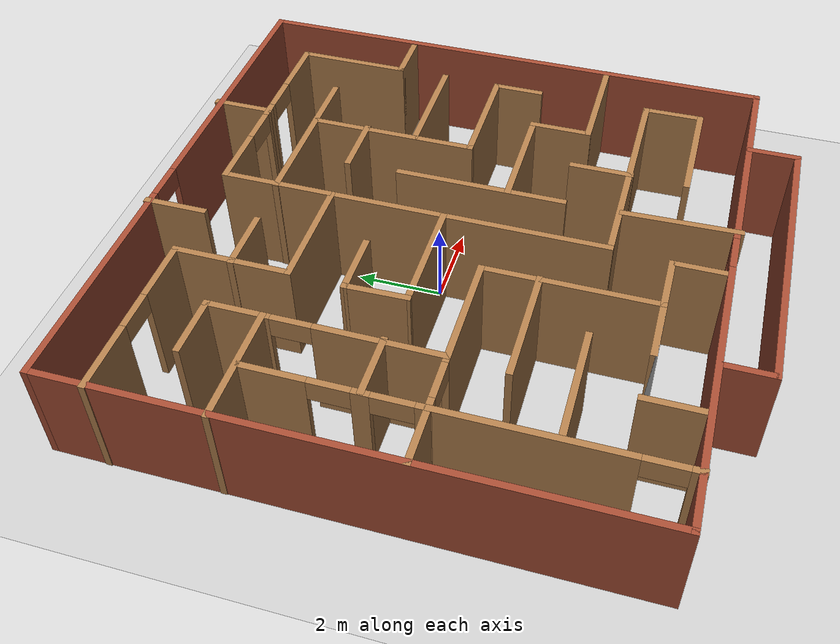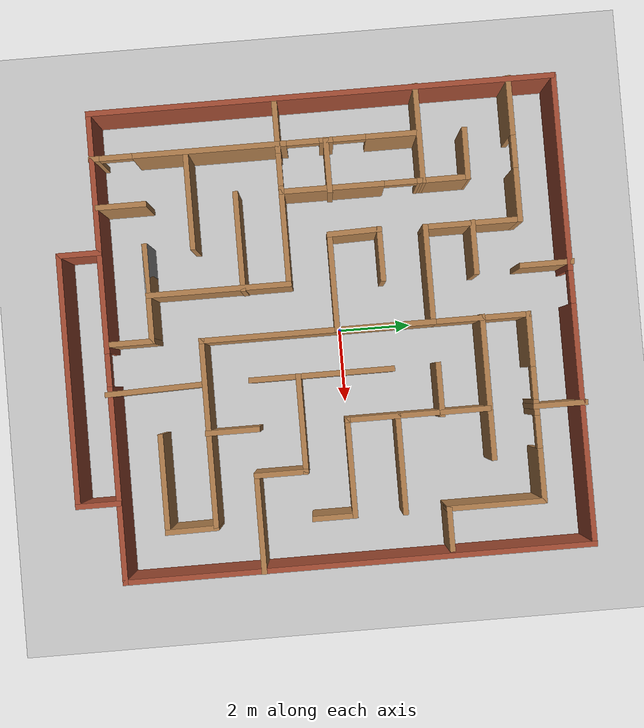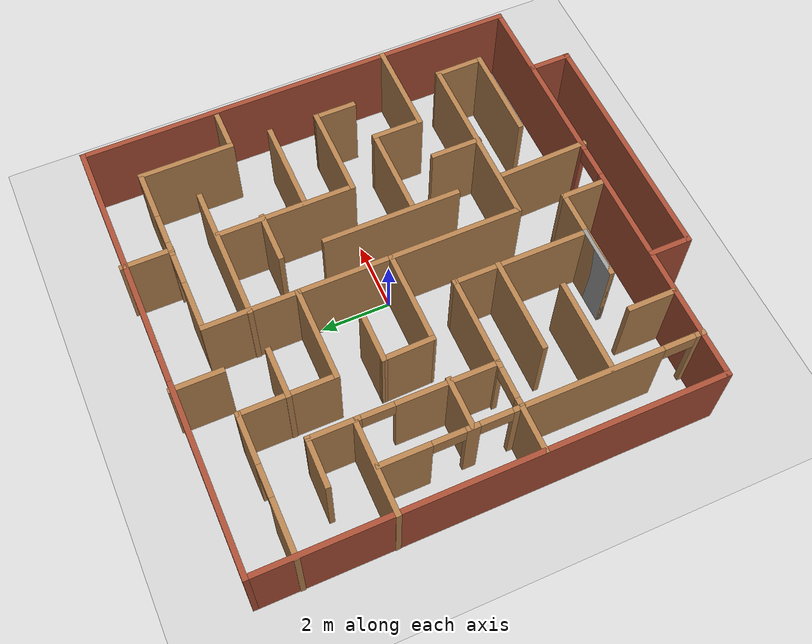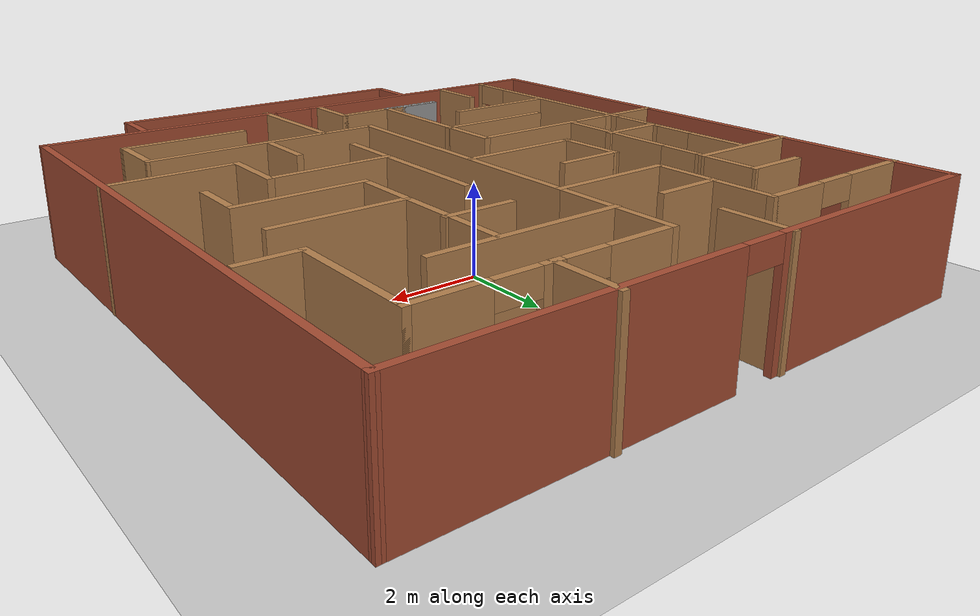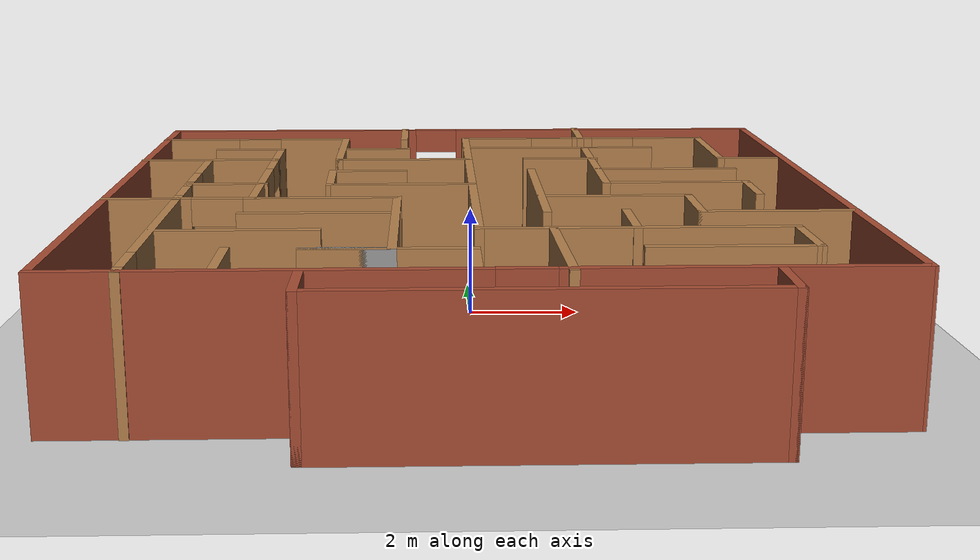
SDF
<sdf version="1.7">
 <world name="default">
  <light name="sun" type="directional">
   <pose>0 0 10 0 -0 0</pose>
   <diffuse>0.8 0.8 0.8 1</diffuse>
   <specular>0.2 0.2 0.2 1</specular>
   <attenuation>
    <range>1000</range>
    <constant>0.9</constant>
    <linear>0.01</linear>
    <quadratic>0.001</quadratic>
   </attenuation>
   <direction>-0.5 0.1 -0.9</direction>
   <spot><inner_angle>0</inner_angle><outer_angle>0</outer_angle><falloff>0</falloff></spot>
  </light>
  <model name="ground_plane">
   <static>1</static>
   <link name="link">
    <collision name="collision">
     <geometry><plane><normal>0 0 1</normal><size>100 100</size></plane></geometry>
     <surface>
      <contact><collide_bitmask>65535</collide_bitmask></contact>
      <friction><ode><mu>100</mu><mu2>50</mu2></ode></friction>
     </surface>
    </collision>
    <visual name="visual">
     <cast_shadows>0</cast_shadows>
     <geometry><plane><normal>0 0 1</normal><size>100 100</size></plane></geometry>
     <material>
      <script><uri>file://media/materials/scripts/gazebo.material</uri><name>Gazebo/Grey</name></script>
     </material>
    </visual>
   </link>
  </model>
  <gravity>0 0 -9.8</gravity>
  <magnetic_field>6e-06 2.3e-05 -4.2e-05</magnetic_field>
  <atmosphere type="adiabatic"/>
  <physics type="ode">
   <max_step_size>0.001</max_step_size>
   <real_time_factor>1</real_time_factor>
   <real_time_update_rate>1000</real_time_update_rate>
  </physics>
  <scene><ambient>0.4 0.4 0.4 1</ambient><background>0.7 0.7 0.7 1</background><shadows>1</shadows></scene>
  <audio><device>default</device></audio>
  <spherical_coordinates>
   <surface_model>EARTH_WGS84</surface_model>
   <latitude_deg>0</latitude_deg>
   <longitude_deg>0</longitude_deg>
   <elevation>0</elevation>
   <heading_deg>0</heading_deg>
  </spherical_coordinates>
  <model name="my_maze">
   <pose>-0.019537 -0.508947 0 0 -0 0</pose>
   <link name="Wall_10">
    <collision name="Wall_10_Collision">
     <geometry><box><size>2.75 0.15 2.5</size></box></geometry>
     <pose>0 0 1.25 0 -0 0</pose>
    </collision>
    <visual name="Wall_10_Visual">
     <pose>0 0 1.25 0 -0 0</pose>
     <geometry><box><size>2.75 0.15 2.5</size></box></geometry>
     <material>
      <script><uri>file://media/materials/scripts/gazebo.material</uri><name>Gazebo/Wood</name></script>
      <ambient>1 1 1 1</ambient>
     </material>
     <meta><layer>0</layer></meta>
    </visual>
    <pose>-2.54872 4.35589 0 0 -0 -1.5708</pose>
   </link>
   <link name="Wall_11">
    <collision name="Wall_11_Collision">
     <geometry><box><size>2.75 0.15 2.5</size></box></geometry>
     <pose>0 0 1.25 0 -0 0</pose>
    </collision>
    <visual name="Wall_11_Visual">
     <pose>0 0 1.25 0 -0 0</pose>
     <geometry><box><size>2.75 0.15 2.5</size></box></geometry>
     <material>
      <script><uri>file://media/materials/scripts/gazebo.material</uri><name>Gazebo/Wood</name></script>
      <ambient>1 1 1 1</ambient>
     </material>
     <meta><layer>0</layer></meta>
    </visual>
    <pose>-1.24872 3.05589 0 0 -0 0</pose>
   </link>
   <link name="Wall_12">
    <collision name="Wall_12_Collision">
     <geometry><box><size>2.75 0.15 2.5</size></box></geometry>
     <pose>0 0 1.25 0 -0 0</pose>
    </collision>
    <visual name="Wall_12_Visual">
     <pose>0 0 1.25 0 -0 0</pose>
     <geometry><box><size>2.75 0.15 2.5</size></box></geometry>
     <material>
      <script><uri>file://media/materials/scripts/gazebo.material</uri><name>Gazebo/Wood</name></script>
      <ambient>1 1 1 1</ambient>
     </material>
     <meta><layer>0</layer></meta>
    </visual>
    <pose>0.051277 4.35589 0 0 -0 1.5708</pose>
   </link>
   <link name="Wall_13">
    <pose>2.60128 5.65589 0 0 -0 0</pose>
    <visual name="Wall_13_Visual_0">
     <pose>-1.8672 0 1.25 0 -0 0</pose>
     <geometry><box><size>1.51561 0.15 2.5</size></box></geometry>
     <material>
      <script><uri>file://media/materials/scripts/gazebo.material</uri><name>Gazebo/Wood</name></script>
      <ambient>1 1 1 1</ambient>
     </material>
     <meta><layer>0</layer></meta>
    </visual>
    <collision name="Wall_13_Collision_0">
     <geometry><box><size>1.51561 0.15 2.5</size></box></geometry>
     <pose>-1.8672 0 1.25 0 -0 0</pose>
    </collision>
    <visual name="Wall_13_Visual_1">
     <pose>0.005614 0 1.25 0 -0 0</pose>
     <geometry><box><size>0.43001 0.15 2.5</size></box></geometry>
     <material>
      <script><uri>file://media/materials/scripts/gazebo.material</uri><name>Gazebo/Wood</name></script>
      <ambient>1 1 1 1</ambient>
     </material>
     <meta><layer>0</layer></meta>
    </visual>
    <collision name="Wall_13_Collision_1">
     <geometry><box><size>0.43001 0.15 2.5</size></box></geometry>
     <pose>0.005614 0 1.25 0 -0 0</pose>
    </collision>
    <visual name="Wall_13_Visual_2">
     <pose>1.87281 0 1.25 0 -0 0</pose>
     <geometry><box><size>1.50438 0.15 2.5</size></box></geometry>
     <material>
      <script><uri>file://media/materials/scripts/gazebo.material</uri><name>Gazebo/Wood</name></script>
      <ambient>1 1 1 1</ambient>
     </material>
     <meta><layer>0</layer></meta>
    </visual>
    <collision name="Wall_13_Collision_2">
     <geometry><box><size>1.50438 0.15 2.5</size></box></geometry>
     <pose>1.87281 0 1.25 0 -0 0</pose>
    </collision>
    <visual name="Wall_13_Visual_3">
     <pose>-0.659391 0 2.25 0 -0 0</pose>
     <geometry><box><size>0.9 0.15 0.5</size></box></geometry>
     <material>
      <script><uri>file://media/materials/scripts/gazebo.material</uri><name>Gazebo/Wood</name></script>
      <ambient>1 1 1 1</ambient>
     </material>
     <meta><layer>0</layer></meta>
    </visual>
    <collision name="Wall_13_Collision_3">
     <geometry><box><size>0.9 0.15 0.5</size></box></geometry>
     <pose>-0.659391 0 2.25 0 -0 0</pose>
    </collision>
    <visual name="Wall_13_Visual_4">
     <pose>0.670619 0 2.25 0 -0 0</pose>
     <geometry><box><size>0.9 0.15 0.5</size></box></geometry>
     <material>
      <script><uri>file://media/materials/scripts/gazebo.material</uri><name>Gazebo/Wood</name></script>
      <ambient>1 1 1 1</ambient>
     </material>
     <meta><layer>0</layer></meta>
    </visual>
    <collision name="Wall_13_Collision_4">
     <geometry><box><size>0.9 0.15 0.5</size></box></geometry>
     <pose>0.670619 0 2.25 0 -0 0</pose>
    </collision>
   </link>
   <link name="Wall_14">
    <collision name="Wall_14_Collision">
     <geometry><box><size>2.75 0.15 2.5</size></box></geometry>
     <pose>0 0 1.25 0 -0 0</pose>
    </collision>
    <visual name="Wall_14_Visual">
     <pose>0 0 1.25 0 -0 0</pose>
     <geometry><box><size>2.75 0.15 2.5</size></box></geometry>
     <material>
      <script><uri>file://media/materials/scripts/gazebo.material</uri><name>Gazebo/Wood</name></script>
      <ambient>1 1 1 1</ambient>
     </material>
     <meta><layer>0</layer></meta>
    </visual>
    <pose>5.15128 4.35589 0 0 -0 -1.5708</pose>
   </link>
   <link name="Wall_15">
    <collision name="Wall_15_Collision">
     <geometry><box><size>1.25 0.15 2.5</size></box></geometry>
     <pose>0 0 1.25 0 -0 0</pose>
    </collision>
    <visual name="Wall_15_Visual">
     <pose>0 0 1.25 0 -0 0</pose>
     <geometry><box><size>1.25 0.15 2.5</size></box></geometry>
     <material>
      <script><uri>file://media/materials/scripts/gazebo.material</uri><name>Gazebo/Wood</name></script>
      <ambient>1 1 1 1</ambient>
     </material>
     <meta><layer>0</layer></meta>
    </visual>
    <pose>5.70128 3.05589 0 0 -0 0</pose>
   </link>
   <link name="Wall_19">
    <collision name="Wall_19_Collision">
     <geometry><box><size>1.5 0.15 2.5</size></box></geometry>
     <pose>0 0 1.25 0 -0 0</pose>
    </collision>
    <visual name="Wall_19_Visual">
     <pose>0 0 1.25 0 -0 0</pose>
     <geometry><box><size>1.5 0.15 2.5</size></box></geometry>
     <material>
      <script><uri>file://media/materials/scripts/gazebo.material</uri><name>Gazebo/Wood</name></script>
      <ambient>1 1 1 1</ambient>
     </material>
     <meta><layer>0</layer></meta>
    </visual>
    <pose>-1.88672 4.34836 0 0 -0 0</pose>
   </link>
   <link name="Wall_2">
    <pose>0.004826 6.90642 0 0 -0 0.001362</pose>
    <visual name="Wall_2_Visual_0">
     <pose>-3.76689 0 1.25 0 -0 0</pose>
     <geometry><box><size>5.45393 0.15 2.5</size></box></geometry>
     <material>
      <script><uri>file://media/materials/scripts/gazebo.material</uri><name>Gazebo/Bricks</name></script>
      <ambient>1 1 1 1</ambient>
     </material>
     <meta><layer>0</layer></meta>
    </visual>
    <collision name="Wall_2_Collision_0">
     <geometry><box><size>5.45393 0.15 2.5</size></box></geometry>
     <pose>-3.76689 0 1.25 0 -0 0</pose>
    </collision>
    <visual name="Wall_2_Visual_1">
     <pose>3.17697 0 1.25 0 -0 0</pose>
     <geometry><box><size>6.63379 0.15 2.5</size></box></geometry>
     <material>
      <script><uri>file://media/materials/scripts/gazebo.material</uri><name>Gazebo/Bricks</name></script>
      <ambient>1 1 1 1</ambient>
     </material>
     <meta><layer>0</layer></meta>
    </visual>
    <collision name="Wall_2_Collision_1">
     <geometry><box><size>6.63379 0.15 2.5</size></box></geometry>
     <pose>3.17697 0 1.25 0 -0 0</pose>
    </collision>
    <visual name="Wall_2_Visual_2">
     <pose>-0.589929 0 2.25 0 -0 0</pose>
     <geometry><box><size>0.9 0.15 0.5</size></box></geometry>
     <material>
      <script><uri>file://media/materials/scripts/gazebo.material</uri><name>Gazebo/Bricks</name></script>
      <ambient>1 1 1 1</ambient>
     </material>
     <meta><layer>0</layer></meta>
    </visual>
    <collision name="Wall_2_Collision_2">
     <geometry><box><size>0.9 0.15 0.5</size></box></geometry>
     <pose>-0.589929 0 2.25 0 -0 0</pose>
    </collision>
   </link>
   <link name="Wall_21">
    <collision name="Wall_21_Collision">
     <geometry><box><size>4 0.15 2.5</size></box></geometry>
     <pose>0 0 1.25 0 -0 0</pose>
    </collision>
    <visual name="Wall_21_Visual">
     <pose>0 0 1.25 0 -0 0</pose>
     <geometry><box><size>4 0.15 2.5</size></box></geometry>
     <material>
      <script><uri>file://media/materials/scripts/gazebo.material</uri><name>Gazebo/Wood</name></script>
      <ambient>1 1 1 1</ambient>
     </material>
     <meta><layer>0</layer></meta>
    </visual>
    <pose>1.9539 4.39462 0 0 -0 0</pose>
   </link>
   <link name="Wall_23">
    <collision name="Wall_23_Collision">
     <geometry><box><size>4 0.15 2.5</size></box></geometry>
     <pose>0 0 1.25 0 -0 0</pose>
    </collision>
    <visual name="Wall_23_Visual">
     <pose>0 0 1.25 0 -0 0</pose>
     <geometry><box><size>4 0.15 2.5</size></box></geometry>
     <material>
      <script><uri>file://media/materials/scripts/gazebo.material</uri><name>Gazebo/Wood</name></script>
      <ambient>1 1 1 1</ambient>
     </material>
     <meta><layer>0</layer></meta>
    </visual>
    <pose>2.52701 2.42336 0 0 -0 -1.5708</pose>
   </link>
   <link name="Wall_24">
    <collision name="Wall_24_Collision">
     <geometry><box><size>2.75 0.15 2.5</size></box></geometry>
     <pose>0 0 1.25 0 -0 0</pose>
    </collision>
    <visual name="Wall_24_Visual">
     <pose>0 0 1.25 0 -0 0</pose>
     <geometry><box><size>2.75 0.15 2.5</size></box></geometry>
     <material>
      <script><uri>file://media/materials/scripts/gazebo.material</uri><name>Gazebo/Wood</name></script>
      <ambient>1 1 1 1</ambient>
     </material>
     <meta><layer>0</layer></meta>
    </visual>
    <pose>3.82701 0.498363 0 0 -0 0</pose>
   </link>
   <link name="Wall_25">
    <collision name="Wall_25_Collision">
     <geometry><box><size>1.25 0.15 2.5</size></box></geometry>
     <pose>0 0 1.25 0 -0 0</pose>
    </collision>
    <visual name="Wall_25_Visual">
     <pose>0 0 1.25 0 -0 0</pose>
     <geometry><box><size>1.25 0.15 2.5</size></box></geometry>
     <material>
      <script><uri>file://media/materials/scripts/gazebo.material</uri><name>Gazebo/Wood</name></script>
      <ambient>1 1 1 1</ambient>
     </material>
     <meta><layer>0</layer></meta>
    </visual>
    <pose>5.12701 -0.051637 0 0 -0 -1.5708</pose>
   </link>
   <link name="Wall_27">
    <collision name="Wall_27_Collision">
     <geometry><box><size>2.75 0.15 2.5</size></box></geometry>
     <pose>0 0 1.25 0 -0 0</pose>
    </collision>
    <visual name="Wall_27_Visual">
     <pose>0 0 1.25 0 -0 0</pose>
     <geometry><box><size>2.75 0.15 2.5</size></box></geometry>
     <material>
      <script><uri>file://media/materials/scripts/gazebo.material</uri><name>Gazebo/Wood</name></script>
      <ambient>1 1 1 1</ambient>
     </material>
     <meta><layer>0</layer></meta>
    </visual>
    <pose>3.85014 1.87339 0 0 -0 0</pose>
   </link>
   <link name="Wall_29">
    <collision name="Wall_29_Collision">
     <geometry><box><size>4 0.15 2.5</size></box></geometry>
     <pose>0 0 1.25 0 -0 0</pose>
    </collision>
    <visual name="Wall_29_Visual">
     <pose>0 0 1.25 0 -0 0</pose>
     <geometry><box><size>4 0.15 2.5</size></box></geometry>
     <material>
      <script><uri>file://media/materials/scripts/gazebo.material</uri><name>Gazebo/Wood</name></script>
      <ambient>1 1 1 1</ambient>
     </material>
     <meta><layer>0</layer></meta>
    </visual>
    <pose>1.23169 -0.097874 0 0 -0 -1.5708</pose>
   </link>
   <link name="Wall_3">
    <collision name="Wall_3_Collision">
     <geometry><box><size>12.9352 0.15 2.5</size></box></geometry>
     <pose>0 0 1.25 0 -0 0</pose>
    </collision>
    <visual name="Wall_3_Visual">
     <pose>0 0 1.25 0 -0 0</pose>
     <geometry><box><size>12.9352 0.15 2.5</size></box></geometry>
     <material>
      <script><uri>file://media/materials/scripts/gazebo.material</uri><name>Gazebo/Bricks</name></script>
      <ambient>1 1 1 1</ambient>
     </material>
     <meta><layer>0</layer></meta>
    </visual>
    <pose>6.42368 0.522552 0 0 -0 -1.5708</pose>
   </link>
   <link name="Wall_31">
    <collision name="Wall_31_Collision">
     <geometry><box><size>2.75 0.15 2.5</size></box></geometry>
     <pose>0 0 1.25 0 -0 0</pose>
    </collision>
    <visual name="Wall_31_Visual">
     <pose>0 0 1.25 0 -0 0</pose>
     <geometry><box><size>2.75 0.15 2.5</size></box></geometry>
     <material>
      <script><uri>file://media/materials/scripts/gazebo.material</uri><name>Gazebo/Wood</name></script>
      <ambient>1 1 1 1</ambient>
     </material>
     <meta><layer>0</layer></meta>
    </visual>
    <pose>2.53169 -0.740371 0 0 -0 0</pose>
   </link>
   <link name="Wall_32">
    <collision name="Wall_32_Collision">
     <geometry><box><size>1.5 0.15 2.5</size></box></geometry>
     <pose>0 0 1.25 0 -0 0</pose>
    </collision>
    <visual name="Wall_32_Visual">
     <pose>0 0 1.25 0 -0 0</pose>
     <geometry><box><size>1.5 0.15 2.5</size></box></geometry>
     <material>
      <script><uri>file://media/materials/scripts/gazebo.material</uri><name>Gazebo/Wood</name></script>
      <ambient>1 1 1 1</ambient>
     </material>
     <meta><layer>0</layer></meta>
    </visual>
    <pose>3.83169 -1.41537 0 0 -0 -1.5708</pose>
   </link>
   <link name="Wall_33">
    <collision name="Wall_33_Collision">
     <geometry><box><size>2.75 0.15 2.5</size></box></geometry>
     <pose>0 0 1.25 0 -0 0</pose>
    </collision>
    <visual name="Wall_33_Visual">
     <pose>0 0 1.25 0 -0 0</pose>
     <geometry><box><size>2.75 0.15 2.5</size></box></geometry>
     <material>
      <script><uri>file://media/materials/scripts/gazebo.material</uri><name>Gazebo/Wood</name></script>
      <ambient>1 1 1 1</ambient>
     </material>
     <meta><layer>0</layer></meta>
    </visual>
    <pose>5.13169 -2.09037 0 0 -0 0</pose>
   </link>
   <link name="Wall_35">
    <pose>-3.85141 -0.786632 0 0 -0 0</pose>
    <visual name="Wall_35_Visual_0">
     <pose>-1.83288 0 1.25 0 -0 0</pose>
     <geometry><box><size>1.58424 0.15 2.5</size></box></geometry>
     <material>
      <script><uri>file://media/materials/scripts/gazebo.material</uri><name>Gazebo/Wood</name></script>
      <ambient>1 1 1 1</ambient>
     </material>
     <meta><layer>0</layer></meta>
    </visual>
    <collision name="Wall_35_Collision_0">
     <geometry><box><size>1.58424 0.15 2.5</size></box></geometry>
     <pose>-1.83288 0 1.25 0 -0 0</pose>
    </collision>
    <visual name="Wall_35_Visual_1">
     <pose>1.24212 0 1.25 0 -0 0</pose>
     <geometry><box><size>2.76575 0.15 2.5</size></box></geometry>
     <material>
      <script><uri>file://media/materials/scripts/gazebo.material</uri><name>Gazebo/Wood</name></script>
      <ambient>1 1 1 1</ambient>
     </material>
     <meta><layer>0</layer></meta>
    </visual>
    <collision name="Wall_35_Collision_1">
     <geometry><box><size>2.76575 0.15 2.5</size></box></geometry>
     <pose>1.24212 0 1.25 0 -0 0</pose>
    </collision>
    <visual name="Wall_35_Visual_2">
     <pose>-0.590755 0 2.25 0 -0 0</pose>
     <geometry><box><size>0.9 0.15 0.5</size></box></geometry>
     <material>
      <script><uri>file://media/materials/scripts/gazebo.material</uri><name>Gazebo/Wood</name></script>
      <ambient>1 1 1 1</ambient>
     </material>
     <meta><layer>0</layer></meta>
    </visual>
    <collision name="Wall_35_Collision_2">
     <geometry><box><size>0.9 0.15 0.5</size></box></geometry>
     <pose>-0.590755 0 2.25 0 -0 0</pose>
    </collision>
   </link>
   <link name="Wall_36">
    <collision name="Wall_36_Collision">
     <geometry><box><size>4 0.15 2.5</size></box></geometry>
     <pose>0 0 1.25 0 -0 0</pose>
    </collision>
    <visual name="Wall_36_Visual">
     <pose>0 0 1.25 0 -0 0</pose>
     <geometry><box><size>4 0.15 2.5</size></box></geometry>
     <material>
      <script><uri>file://media/materials/scripts/gazebo.material</uri><name>Gazebo/Wood</name></script>
      <ambient>1 1 1 1</ambient>
     </material>
     <meta><layer>0</layer></meta>
    </visual>
    <pose>-1.30141 -2.71163 0 0 -0 -1.5708</pose>
   </link>
   <link name="Wall_37">
    <collision name="Wall_37_Collision">
     <geometry><box><size>1.5 0.15 2.5</size></box></geometry>
     <pose>0 0 1.25 0 -0 0</pose>
    </collision>
    <visual name="Wall_37_Visual">
     <pose>0 0 1.25 0 -0 0</pose>
     <geometry><box><size>1.5 0.15 2.5</size></box></geometry>
     <material>
      <script><uri>file://media/materials/scripts/gazebo.material</uri><name>Gazebo/Grey</name></script>
      <ambient>1 1 1 1</ambient>
     </material>
     <meta><layer>0</layer></meta>
    </visual>
    <pose>-1.97641 -4.63663 0 0 -0 3.14159</pose>
   </link>
   <link name="Wall_38">
    <collision name="Wall_38_Collision">
     <geometry><box><size>2.75 0.15 2.5</size></box></geometry>
     <pose>0 0 1.25 0 -0 0</pose>
    </collision>
    <visual name="Wall_38_Visual">
     <pose>0 0 1.25 0 -0 0</pose>
     <geometry><box><size>2.75 0.15 2.5</size></box></geometry>
     <material>
      <script><uri>file://media/materials/scripts/gazebo.material</uri><name>Gazebo/Wood</name></script>
      <ambient>1 1 1 1</ambient>
     </material>
     <meta><layer>0</layer></meta>
    </visual>
    <pose>-1.35141 -4.63663 0 0 -0 0</pose>
   </link>
   <link name="Wall_39">
    <collision name="Wall_39_Collision">
     <geometry><box><size>1.25 0.15 2.5</size></box></geometry>
     <pose>0 0 1.25 0 -0 0</pose>
    </collision>
    <visual name="Wall_39_Visual">
     <pose>0 0 1.25 0 -0 0</pose>
     <geometry><box><size>1.25 0.15 2.5</size></box></geometry>
     <material>
      <script><uri>file://media/materials/scripts/gazebo.material</uri><name>Gazebo/Wood</name></script>
      <ambient>1 1 1 1</ambient>
     </material>
     <meta><layer>0</layer></meta>
    </visual>
    <pose>-0.051406 -5.18663 0 0 -0 -1.5708</pose>
   </link>
   <link name="Wall_4">
    <pose>0.013571 -5.87881 0 0 -0 -3.14023</pose>
    <visual name="Wall_4_Visual_0">
     <pose>-3.77997 0 1.25 0 -0 0</pose>
     <geometry><box><size>5.41032 0.15 2.5</size></box></geometry>
     <material>
      <script><uri>file://media/materials/scripts/gazebo.material</uri><name>Gazebo/Bricks</name></script>
      <ambient>1 1 1 1</ambient>
     </material>
     <meta><layer>0</layer></meta>
    </visual>
    <collision name="Wall_4_Collision_0">
     <geometry><box><size>5.41032 0.15 2.5</size></box></geometry>
     <pose>-3.77997 0 1.25 0 -0 0</pose>
    </collision>
    <visual name="Wall_4_Visual_1">
     <pose>3.15516 0 1.25 0 -0 0</pose>
     <geometry><box><size>6.65994 0.15 2.5</size></box></geometry>
     <material>
      <script><uri>file://media/materials/scripts/gazebo.material</uri><name>Gazebo/Bricks</name></script>
      <ambient>1 1 1 1</ambient>
     </material>
     <meta><layer>0</layer></meta>
    </visual>
    <collision name="Wall_4_Collision_1">
     <geometry><box><size>6.65994 0.15 2.5</size></box></geometry>
     <pose>3.15516 0 1.25 0 -0 0</pose>
    </collision>
    <visual name="Wall_4_Visual_2">
     <pose>-0.624813 0 2.25 0 -0 0</pose>
     <geometry><box><size>0.9 0.15 0.5</size></box></geometry>
     <material>
      <script><uri>file://media/materials/scripts/gazebo.material</uri><name>Gazebo/Bricks</name></script>
      <ambient>1 1 1 1</ambient>
     </material>
     <meta><layer>0</layer></meta>
    </visual>
    <collision name="Wall_4_Collision_2">
     <geometry><box><size>0.9 0.15 0.5</size></box></geometry>
     <pose>-0.624813 0 2.25 0 -0 0</pose>
    </collision>
   </link>
   <link name="Wall_41">
    <collision name="Wall_41_Collision">
     <geometry><box><size>2.75 0.15 2.5</size></box></geometry>
     <pose>0 0 1.25 0 -0 0</pose>
    </collision>
    <visual name="Wall_41_Visual">
     <pose>0 0 1.25 0 -0 0</pose>
     <geometry><box><size>2.75 0.15 2.5</size></box></geometry>
     <material>
      <script><uri>file://media/materials/scripts/gazebo.material</uri><name>Gazebo/Wood</name></script>
      <ambient>1 1 1 1</ambient>
     </material>
     <meta><layer>0</layer></meta>
    </visual>
    <pose>-5.12454 3.09931 0 0 -0 0</pose>
   </link>
   <link name="Wall_48">
    <collision name="Wall_48_Collision">
     <geometry><box><size>1.38431 0.15 2.5</size></box></geometry>
     <pose>0 0 1.25 0 -0 0</pose>
    </collision>
    <visual name="Wall_48_Visual">
     <pose>0 0 1.25 0 -0 0</pose>
     <geometry><box><size>1.38431 0.15 2.5</size></box></geometry>
     <material>
      <script><uri>file://media/materials/scripts/gazebo.material</uri><name>Gazebo/Wood</name></script>
      <ambient>1 1 1 1</ambient>
     </material>
     <meta><layer>0</layer></meta>
    </visual>
    <pose>-3.82452 3.71647 0 0 -0 1.57077</pose>
   </link>
   <link name="Wall_49">
    <collision name="Wall_49_Collision">
     <geometry><box><size>1.43805 0.15 2.5</size></box></geometry>
     <pose>0 0 1.25 0 -0 0</pose>
    </collision>
    <visual name="Wall_49_Visual">
     <pose>0 0 1.25 0 -0 0</pose>
     <geometry><box><size>1.43805 0.15 2.5</size></box></geometry>
     <material>
      <script><uri>file://media/materials/scripts/gazebo.material</uri><name>Gazebo/Wood</name></script>
      <ambient>1 1 1 1</ambient>
     </material>
     <meta><layer>0</layer></meta>
    </visual>
    <pose>-4.46851 4.33938 0 0 -0 3.13266</pose>
   </link>
   <link name="Wall_5">
    <collision name="Wall_5_Collision">
     <geometry><box><size>12.9352 0.15 2.5</size></box></geometry>
     <pose>0 0 1.25 0 -0 0</pose>
    </collision>
    <visual name="Wall_5_Visual">
     <pose>0 0 1.25 0 -0 0</pose>
     <geometry><box><size>12.9352 0.15 2.5</size></box></geometry>
     <material>
      <script><uri>file://media/materials/scripts/gazebo.material</uri><name>Gazebo/Bricks</name></script>
      <ambient>1 1 1 1</ambient>
     </material>
     <meta><layer>0</layer></meta>
    </visual>
    <pose>-6.40528 0.505062 0 0 -0 1.57216</pose>
   </link>
   <link name="Wall_51">
    <pose>-3.83027 1.15772 0 0 -0 1.56784</pose>
    <visual name="Wall_51_Visual_0">
     <pose>-0.568955 0 1.25 0 -0 0</pose>
     <geometry><box><size>2.89529 0.15 2.5</size></box></geometry>
     <material>
      <script><uri>file://media/materials/scripts/gazebo.material</uri><name>Gazebo/Wood</name></script>
      <ambient>1 1 1 1</ambient>
     </material>
     <meta><layer>0</layer></meta>
    </visual>
    <collision name="Wall_51_Collision_0">
     <geometry><box><size>2.89529 0.15 2.5</size></box></geometry>
     <pose>-0.568955 0 1.25 0 -0 0</pose>
    </collision>
    <visual name="Wall_51_Visual_1">
     <pose>1.89765 0 1.25 0 -0 0</pose>
     <geometry><box><size>0.23791 0.15 2.5</size></box></geometry>
     <material>
      <script><uri>file://media/materials/scripts/gazebo.material</uri><name>Gazebo/Wood</name></script>
      <ambient>1 1 1 1</ambient>
     </material>
     <meta><layer>0</layer></meta>
    </visual>
    <collision name="Wall_51_Collision_1">
     <geometry><box><size>0.23791 0.15 2.5</size></box></geometry>
     <pose>1.89765 0 1.25 0 -0 0</pose>
    </collision>
    <visual name="Wall_51_Visual_2">
     <pose>1.32869 0 2.25 0 -0 0</pose>
     <geometry><box><size>0.9 0.15 0.5</size></box></geometry>
     <material>
      <script><uri>file://media/materials/scripts/gazebo.material</uri><name>Gazebo/Wood</name></script>
      <ambient>1 1 1 1</ambient>
     </material>
     <meta><layer>0</layer></meta>
    </visual>
    <collision name="Wall_51_Collision_2">
     <geometry><box><size>0.9 0.15 0.5</size></box></geometry>
     <pose>1.32869 0 2.25 0 -0 0</pose>
    </collision>
   </link>
   <link name="Wall_53">
    <pose>-5.14701 1.12062 0 0 -0 -1.5708</pose>
    <visual name="Wall_53_Visual_0">
     <pose>-1.25607 0 1.25 0 -0 0</pose>
     <geometry><box><size>1.48786 0.15 2.5</size></box></geometry>
     <material>
      <script><uri>file://media/materials/scripts/gazebo.material</uri><name>Gazebo/Wood</name></script>
      <ambient>1 1 1 1</ambient>
     </material>
     <meta><layer>0</layer></meta>
    </visual>
    <collision name="Wall_53_Collision_0">
     <geometry><box><size>1.48786 0.15 2.5</size></box></geometry>
     <pose>-1.25607 0 1.25 0 -0 0</pose>
    </collision>
    <visual name="Wall_53_Visual_1">
     <pose>0.57626 0 1.25 0 -0 0</pose>
     <geometry><box><size>0.37681 0.15 2.5</size></box></geometry>
     <material>
      <script><uri>file://media/materials/scripts/gazebo.material</uri><name>Gazebo/Wood</name></script>
      <ambient>1 1 1 1</ambient>
     </material>
     <meta><layer>0</layer></meta>
    </visual>
    <collision name="Wall_53_Collision_1">
     <geometry><box><size>0.37681 0.15 2.5</size></box></geometry>
     <pose>0.57626 0 1.25 0 -0 0</pose>
    </collision>
    <visual name="Wall_53_Visual_2">
     <pose>1.83233 0 1.25 0 -0 0</pose>
     <geometry><box><size>0.335335 0.15 2.5</size></box></geometry>
     <material>
      <script><uri>file://media/materials/scripts/gazebo.material</uri><name>Gazebo/Wood</name></script>
      <ambient>1 1 1 1</ambient>
     </material>
     <meta><layer>0</layer></meta>
    </visual>
    <collision name="Wall_53_Collision_2">
     <geometry><box><size>0.335335 0.15 2.5</size></box></geometry>
     <pose>1.83233 0 1.25 0 -0 0</pose>
    </collision>
    <visual name="Wall_53_Visual_3">
     <pose>-0.062144 0 2.25 0 -0 0</pose>
     <geometry><box><size>0.9 0.15 0.5</size></box></geometry>
     <material>
      <script><uri>file://media/materials/scripts/gazebo.material</uri><name>Gazebo/Wood</name></script>
      <ambient>1 1 1 1</ambient>
     </material>
     <meta><layer>0</layer></meta>
    </visual>
    <collision name="Wall_53_Collision_3">
     <geometry><box><size>0.9 0.15 0.5</size></box></geometry>
     <pose>-0.062144 0 2.25 0 -0 0</pose>
    </collision>
    <visual name="Wall_53_Visual_4">
     <pose>1.21467 0 2.25 0 -0 0</pose>
     <geometry><box><size>0.9 0.15 0.5</size></box></geometry>
     <material>
      <script><uri>file://media/materials/scripts/gazebo.material</uri><name>Gazebo/Wood</name></script>
      <ambient>1 1 1 1</ambient>
     </material>
     <meta><layer>0</layer></meta>
    </visual>
    <collision name="Wall_53_Collision_4">
     <geometry><box><size>0.9 0.15 0.5</size></box></geometry>
     <pose>1.21467 0 2.25 0 -0 0</pose>
    </collision>
   </link>
   <link name="Wall_55">
    <collision name="Wall_55_Collision">
     <geometry><box><size>1.5 0.15 2.5</size></box></geometry>
     <pose>0 0 1.25 0 -0 0</pose>
    </collision>
    <visual name="Wall_55_Visual">
     <pose>0 0 1.25 0 -0 0</pose>
     <geometry><box><size>1.5 0.15 2.5</size></box></geometry>
     <material>
      <script><uri>file://media/materials/scripts/gazebo.material</uri><name>Gazebo/Wood</name></script>
      <ambient>1 1 1 1</ambient>
     </material>
     <meta><layer>0</layer></meta>
    </visual>
    <pose>-4.44901 0.538625 0 0 -0 0</pose>
   </link>
   <link name="Wall_57">
    <pose>-5.14701 -3.35438 0 0 -0 -1.5708</pose>
    <visual name="Wall_57_Visual_0">
     <pose>-0.600748 0 1.25 0 -0 0</pose>
     <geometry><box><size>4.0485 0.15 2.5</size></box></geometry>
     <material>
      <script><uri>file://media/materials/scripts/gazebo.material</uri><name>Gazebo/Wood</name></script>
      <ambient>1 1 1 1</ambient>
     </material>
     <meta><layer>0</layer></meta>
    </visual>
    <collision name="Wall_57_Collision_0">
     <geometry><box><size>4.0485 0.15 2.5</size></box></geometry>
     <pose>-0.600748 0 1.25 0 -0 0</pose>
    </collision>
    <visual name="Wall_57_Visual_1">
     <pose>2.47425 0 1.25 0 -0 0</pose>
     <geometry><box><size>0.301496 0.15 2.5</size></box></geometry>
     <material>
      <script><uri>file://media/materials/scripts/gazebo.material</uri><name>Gazebo/Wood</name></script>
      <ambient>1 1 1 1</ambient>
     </material>
     <meta><layer>0</layer></meta>
    </visual>
    <collision name="Wall_57_Collision_1">
     <geometry><box><size>0.301496 0.15 2.5</size></box></geometry>
     <pose>2.47425 0 1.25 0 -0 0</pose>
    </collision>
    <visual name="Wall_57_Visual_2">
     <pose>1.8735 0 2.25 0 -0 0</pose>
     <geometry><box><size>0.9 0.15 0.5</size></box></geometry>
     <material>
      <script><uri>file://media/materials/scripts/gazebo.material</uri><name>Gazebo/Wood</name></script>
      <ambient>1 1 1 1</ambient>
     </material>
     <meta><layer>0</layer></meta>
    </visual>
    <collision name="Wall_57_Collision_2">
     <geometry><box><size>0.9 0.15 0.5</size></box></geometry>
     <pose>1.8735 0 2.25 0 -0 0</pose>
    </collision>
   </link>
   <link name="Wall_59">
    <collision name="Wall_59_Collision">
     <geometry><box><size>2.75 0.15 2.5</size></box></geometry>
     <pose>0 0 1.25 0 -0 0</pose>
    </collision>
    <visual name="Wall_59_Visual">
     <pose>0 0 1.25 0 -0 0</pose>
     <geometry><box><size>2.75 0.15 2.5</size></box></geometry>
     <material>
      <script><uri>file://media/materials/scripts/gazebo.material</uri><name>Gazebo/Wood</name></script>
      <ambient>1 1 1 1</ambient>
     </material>
     <meta><layer>0</layer></meta>
    </visual>
    <pose>-3.82793 -3.3185 0 0 -0 0</pose>
   </link>
   <link name="Wall_61">
    <collision name="Wall_61_Collision">
     <geometry><box><size>2.75 0.15 2.5</size></box></geometry>
     <pose>0 0 1.25 0 -0 0</pose>
    </collision>
    <visual name="Wall_61_Visual">
     <pose>0 0 1.25 0 -0 0</pose>
     <geometry><box><size>2.75 0.15 2.5</size></box></geometry>
     <material>
      <script><uri>file://media/materials/scripts/gazebo.material</uri><name>Gazebo/Wood</name></script>
      <ambient>1 1 1 1</ambient>
     </material>
     <meta><layer>0</layer></meta>
    </visual>
    <pose>-2.57888 -2.04632 0 0 -0 0</pose>
   </link>
   <link name="Wall_63">
    <collision name="Wall_63_Collision">
     <geometry><box><size>1.39905 0.15 2.5</size></box></geometry>
     <pose>0 0 1.25 0 -0 0</pose>
    </collision>
    <visual name="Wall_63_Visual">
     <pose>0 0 1.25 0 -0 0</pose>
     <geometry><box><size>1.39905 0.15 2.5</size></box></geometry>
     <material>
      <script><uri>file://media/materials/scripts/gazebo.material</uri><name>Gazebo/Wood</name></script>
      <ambient>1 1 1 1</ambient>
     </material>
     <meta><layer>0</layer></meta>
    </visual>
    <pose>-3.80949 -5.19208 0 0 -0 1.5708</pose>
   </link>
   <link name="Wall_65">
    <collision name="Wall_65_Collision">
     <geometry><box><size>6.5 0.15 2.5</size></box></geometry>
     <pose>0 0 1.25 0 -0 0</pose>
    </collision>
    <visual name="Wall_65_Visual">
     <pose>0 0 1.25 0 -0 0</pose>
     <geometry><box><size>6.5 0.15 2.5</size></box></geometry>
     <material>
      <script><uri>file://media/materials/scripts/gazebo.material</uri><name>Gazebo/Wood</name></script>
      <ambient>1 1 1 1</ambient>
     </material>
     <meta><layer>0</layer></meta>
    </visual>
    <pose>0.051277 -0.119114 0 0 -0 -1.5708</pose>
   </link>
   <link name="Wall_66">
    <collision name="Wall_66_Collision">
     <geometry><box><size>5.25 0.15 2.5</size></box></geometry>
     <pose>0 0 1.25 0 -0 0</pose>
    </collision>
    <visual name="Wall_66_Visual">
     <pose>0 0 1.25 0 -0 0</pose>
     <geometry><box><size>5.25 0.15 2.5</size></box></geometry>
     <material>
      <script><uri>file://media/materials/scripts/gazebo.material</uri><name>Gazebo/Wood</name></script>
      <ambient>1 1 1 1</ambient>
     </material>
     <meta><layer>0</layer></meta>
    </visual>
    <pose>2.60128 -3.29411 0 0 -0 0</pose>
   </link>
   <link name="Wall_67">
    <collision name="Wall_67_Collision">
     <geometry><box><size>1.46978 0.15 2.5</size></box></geometry>
     <pose>0 0 1.25 0 -0 0</pose>
    </collision>
    <visual name="Wall_67_Visual">
     <pose>0 0 1.25 0 -0 0</pose>
     <geometry><box><size>1.46978 0.15 2.5</size></box></geometry>
     <material>
      <script><uri>file://media/materials/scripts/gazebo.material</uri><name>Gazebo/Wood</name></script>
      <ambient>1 1 1 1</ambient>
     </material>
     <meta><layer>0</layer></meta>
    </visual>
    <pose>5.15823 -3.95397 0 0 -0 -1.56026</pose>
   </link>
   <link name="Wall_68">
    <collision name="Wall_68_Collision">
     <geometry><box><size>2.75 0.15 2.5</size></box></geometry>
     <pose>0 0 1.25 0 -0 0</pose>
    </collision>
    <visual name="Wall_68_Visual">
     <pose>0 0 1.25 0 -0 0</pose>
     <geometry><box><size>2.75 0.15 2.5</size></box></geometry>
     <material>
      <script><uri>file://media/materials/scripts/gazebo.material</uri><name>Gazebo/Wood</name></script>
      <ambient>1 1 1 1</ambient>
     </material>
     <meta><layer>0</layer></meta>
    </visual>
    <pose>3.86519 -4.61382 0 0 -0 3.14159</pose>
   </link>
   <link name="Wall_7">
    <pose>-4.49012 5.65589 0 0 -0 0</pose>
    <visual name="Wall_7_Visual_0">
     <pose>-1.19601 0 1.25 0 -0 0</pose>
     <geometry><box><size>1.64113 0.15 2.5</size></box></geometry>
     <material>
      <script><uri>file://media/materials/scripts/gazebo.material</uri><name>Gazebo/Wood</name></script>
      <ambient>1 1 1 1</ambient>
     </material>
     <meta><layer>0</layer></meta>
    </visual>
    <collision name="Wall_7_Collision_0">
     <geometry><box><size>1.64113 0.15 2.5</size></box></geometry>
     <pose>-1.19601 0 1.25 0 -0 0</pose>
    </collision>
    <visual name="Wall_7_Visual_1">
     <pose>1.27057 0 1.25 0 -0 0</pose>
     <geometry><box><size>1.49202 0.15 2.5</size></box></geometry>
     <material>
      <script><uri>file://media/materials/scripts/gazebo.material</uri><name>Gazebo/Wood</name></script>
      <ambient>1 1 1 1</ambient>
     </material>
     <meta><layer>0</layer></meta>
    </visual>
    <collision name="Wall_7_Collision_1">
     <geometry><box><size>1.49202 0.15 2.5</size></box></geometry>
     <pose>1.27057 0 1.25 0 -0 0</pose>
    </collision>
    <visual name="Wall_7_Visual_2">
     <pose>0.074558 0 2.25 0 -0 0</pose>
     <geometry><box><size>0.9 0.15 0.5</size></box></geometry>
     <material>
      <script><uri>file://media/materials/scripts/gazebo.material</uri><name>Gazebo/Wood</name></script>
      <ambient>1 1 1 1</ambient>
     </material>
     <meta><layer>0</layer></meta>
    </visual>
    <collision name="Wall_7_Collision_2">
     <geometry><box><size>0.9 0.15 0.5</size></box></geometry>
     <pose>0.074558 0 2.25 0 -0 0</pose>
    </collision>
   </link>
   <link name="Wall_70">
    <collision name="Wall_70_Collision">
     <geometry><box><size>2.74156 0.15 2.5</size></box></geometry>
     <pose>0 0 1.25 0 -0 0</pose>
    </collision>
    <visual name="Wall_70_Visual">
     <pose>0 0 1.25 0 -0 0</pose>
     <geometry><box><size>2.74156 0.15 2.5</size></box></geometry>
     <material>
      <script><uri>file://media/materials/scripts/gazebo.material</uri><name>Gazebo/Wood</name></script>
      <ambient>1 1 1 1</ambient>
     </material>
     <meta><layer>0</layer></meta>
    </visual>
    <pose>1.26768 -4.66008 0 0 -0 -1.54402</pose>
   </link>
   <link name="Wall_72">
    <collision name="Wall_72_Collision">
     <geometry><box><size>1.5 0.15 2.5</size></box></geometry>
     <pose>0 0 1.25 0 -0 0</pose>
    </collision>
    <visual name="Wall_72_Visual">
     <pose>0 0 1.25 0 -0 0</pose>
     <geometry><box><size>1.5 0.15 2.5</size></box></geometry>
     <material>
      <script><uri>file://media/materials/scripts/gazebo.material</uri><name>Gazebo/Wood</name></script>
      <ambient>1 1 1 1</ambient>
     </material>
     <meta><layer>0</layer></meta>
    </visual>
    <pose>-1.91699 1.79336 0 0 -0 3.14159</pose>
   </link>
   <link name="Wall_73">
    <collision name="Wall_73_Collision">
     <geometry><box><size>1.5158 0.15 2.5</size></box></geometry>
     <pose>0 0 1.25 0 -0 0</pose>
    </collision>
    <visual name="Wall_73_Visual">
     <pose>0 0 1.25 0 -0 0</pose>
     <geometry><box><size>1.5158 0.15 2.5</size></box></geometry>
     <material>
      <script><uri>file://media/materials/scripts/gazebo.material</uri><name>Gazebo/Wood</name></script>
      <ambient>1 1 1 1</ambient>
     </material>
     <meta><layer>0</layer></meta>
    </visual>
    <pose>-2.57621 1.11101 0 0 -0 -1.54768</pose>
   </link>
   <link name="Wall_74">
    <collision name="Wall_74_Collision">
     <geometry><box><size>2.75 0.15 2.5</size></box></geometry>
     <pose>0 0 1.25 0 -0 0</pose>
    </collision>
    <visual name="Wall_74_Visual">
     <pose>0 0 1.25 0 -0 0</pose>
     <geometry><box><size>2.75 0.15 2.5</size></box></geometry>
     <material>
      <script><uri>file://media/materials/scripts/gazebo.material</uri><name>Gazebo/Wood</name></script>
      <ambient>1 1 1 1</ambient>
     </material>
     <meta><layer>0</layer></meta>
    </visual>
    <pose>-1.26043 0.428654 0 0 -0 0</pose>
   </link>
   <link name="Wall_76">
    <collision name="Wall_76_Collision">
     <geometry><box><size>1.5 0.15 2.5</size></box></geometry>
     <pose>0 0 1.25 0 -0 0</pose>
    </collision>
    <visual name="Wall_76_Visual">
     <pose>0 0 1.25 0 -0 0</pose>
     <geometry><box><size>1.5 0.15 2.5</size></box></geometry>
     <material>
      <script><uri>file://media/materials/scripts/gazebo.material</uri><name>Gazebo/Wood</name></script>
      <ambient>1 1 1 1</ambient>
     </material>
     <meta><layer>0</layer></meta>
    </visual>
    <pose>1.90798 3.08867 0 0 -0 0</pose>
   </link>
   <link name="Wall_78">
    <collision name="Wall_78_Collision">
     <geometry><box><size>1.5 0.15 2.5</size></box></geometry>
     <pose>0 0 1.25 0 -0 0</pose>
    </collision>
    <visual name="Wall_78_Visual">
     <pose>0 0 1.25 0 -0 0</pose>
     <geometry><box><size>1.5 0.15 2.5</size></box></geometry>
     <material>
      <script><uri>file://media/materials/scripts/gazebo.material</uri><name>Gazebo/Wood</name></script>
      <ambient>1 1 1 1</ambient>
     </material>
     <meta><layer>0</layer></meta>
    </visual>
    <pose>2.57456 -2.6435 0 0 -0 1.5708</pose>
   </link>
   <link name="Wall_80">
    <collision name="Wall_80_Collision">
     <geometry><box><size>1.5 0.15 2.5</size></box></geometry>
     <pose>0 0 1.25 0 -0 0</pose>
    </collision>
    <visual name="Wall_80_Visual">
     <pose>0 0 1.25 0 -0 0</pose>
     <geometry><box><size>1.5 0.15 2.5</size></box></geometry>
     <material>
      <script><uri>file://media/materials/scripts/gazebo.material</uri><name>Gazebo/Wood</name></script>
      <ambient>1 1 1 1</ambient>
     </material>
     <meta><layer>0</layer></meta>
    </visual>
    <pose>2.57622 6.31788 0 0 -0 -1.5708</pose>
   </link>
   <link name="Wall_82">
    <collision name="Wall_82_Collision">
     <geometry><box><size>1.5 0.15 2.5</size></box></geometry>
     <pose>0 0 1.25 0 -0 0</pose>
    </collision>
    <visual name="Wall_82_Visual">
     <pose>0 0 1.25 0 -0 0</pose>
     <geometry><box><size>1.5 0.15 2.5</size></box></geometry>
     <material>
      <script><uri>file://media/materials/scripts/gazebo.material</uri><name>Gazebo/Wood</name></script>
      <ambient>1 1 1 1</ambient>
     </material>
     <meta><layer>0</layer></meta>
    </visual>
    <pose>-1.27674 6.28001 0 0 -0 -1.5708</pose>
   </link>
   <link name="Wall_84">
    <collision name="Wall_84_Collision">
     <geometry><box><size>1.25 0.15 2.5</size></box></geometry>
     <pose>0 0 1.25 0 -0 0</pose>
    </collision>
    <visual name="Wall_84_Visual">
     <pose>0 0 1.25 0 -0 0</pose>
     <geometry><box><size>1.25 0.15 2.5</size></box></geometry>
     <material>
      <script><uri>file://media/materials/scripts/gazebo.material</uri><name>Gazebo/Bricks</name></script>
      <ambient>1 1 1 1</ambient>
     </material>
     <meta><layer>0</layer></meta>
    </visual>
    <pose>-2.58015 -6.44288 0 0 -0 -1.5708</pose>
   </link>
   <link name="Wall_85">
    <collision name="Wall_85_Collision">
     <geometry><box><size>7 0.15 2.5</size></box></geometry>
     <pose>0 0 1.25 0 -0 0</pose>
    </collision>
    <visual name="Wall_85_Visual">
     <pose>0 0 1.25 0 -0 0</pose>
     <geometry><box><size>7 0.15 2.5</size></box></geometry>
     <material>
      <script><uri>file://media/materials/scripts/gazebo.material</uri><name>Gazebo/Bricks</name></script>
      <ambient>1 1 1 1</ambient>
     </material>
     <meta><layer>0</layer></meta>
    </visual>
    <pose>0.844852 -6.99288 0 0 -0 0</pose>
   </link>
   <link name="Wall_86">
    <collision name="Wall_86_Collision">
     <geometry><box><size>1.25 0.15 2.5</size></box></geometry>
     <pose>0 0 1.25 0 -0 0</pose>
    </collision>
    <visual name="Wall_86_Visual">
     <pose>0 0 1.25 0 -0 0</pose>
     <geometry><box><size>1.25 0.15 2.5</size></box></geometry>
     <material>
      <script><uri>file://media/materials/scripts/gazebo.material</uri><name>Gazebo/Bricks</name></script>
      <ambient>1 1 1 1</ambient>
     </material>
     <meta><layer>0</layer></meta>
    </visual>
    <pose>4.26985 -6.44288 0 0 -0 1.5708</pose>
   </link>
   <static>1</static>
  </model>
 </world>
</sdf>
